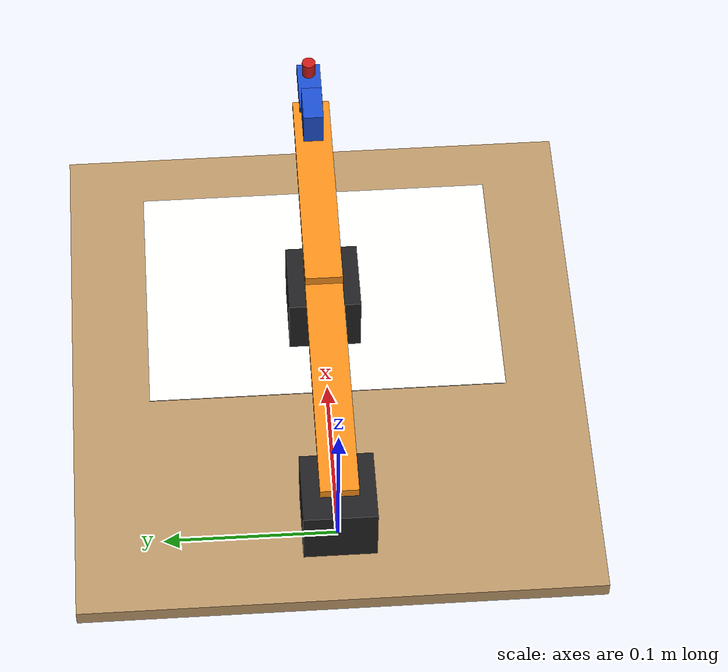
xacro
<?xml version="1.0"?>
<robot name="drawbot" xmlns:xacro="http://www.ros.org/wiki/xacro">

  <xacro:property name="L1" value="0.14"/>
  <xacro:property name="L2" value="0.14"/>          <!-- elbow axis to pen tip -->
  <xacro:property name="pen_offset" value="0.02"/>  <!-- lift hinge to pen axis -->
  <xacro:property name="link_w" value="0.022"/>
  <xacro:property name="link_t" value="0.006"/>
  <xacro:property name="nema" value="0.042"/>       <!-- NEMA 17 faceplate -->
  <xacro:property name="nema_h" value="0.040"/>
  <xacro:property name="board_t" value="0.010"/>
  <xacro:property name="shoulder_z" value="0.057"/>
  <xacro:property name="hinge_z" value="0.071"/>    <!-- lift hinge height above ground -->
  <xacro:property name="tip_clearance" value="0.0005"/>
  <xacro:property name="paper_top" value="${board_t + 0.0005}"/>

  <material name="wood"><color rgba="0.72 0.58 0.40 1"/></material>
  <material name="paper"><color rgba="0.97 0.97 0.95 1"/></material>
  <material name="motor"><color rgba="0.12 0.12 0.13 1"/></material>
  <material name="steel"><color rgba="0.75 0.75 0.78 1"/></material>
  <material name="arm"><color rgba="0.95 0.55 0.10 1"/></material>
  <material name="servo"><color rgba="0.10 0.30 0.80 1"/></material>
  <material name="pen"><color rgba="0.80 0.10 0.10 1"/></material>

  <xacro:macro name="box_inertial" params="m x y z *origin">
    <inertial>
      <xacro:insert_block name="origin"/>
      <mass value="${m}"/>
      <inertia ixx="${m*(y*y+z*z)/12}" iyy="${m*(x*x+z*z)/12}" izz="${m*(x*x+y*y)/12}"
               ixy="0" ixz="0" iyz="0"/>
    </inertial>
  </xacro:macro>

  <xacro:macro name="nema17" params="x z">
    <visual>
      <origin xyz="${x} 0 ${z}"/>
      <geometry><box size="${nema} ${nema} ${nema_h}"/></geometry>
      <material name="motor"/>
    </visual>
    <visual>
      <origin xyz="${x} 0 ${z + nema_h/2 + 0.006}"/>
      <geometry><cylinder radius="0.0025" length="0.012"/></geometry>
      <material name="steel"/>
    </visual>
  </xacro:macro>

  <!-- ================= base: board, paper, shoulder motor ================= -->
  <link name="world"/>
  <joint name="world_fixed" type="fixed">
    <parent link="world"/>
    <child link="base_link"/>
  </joint>

  <link name="base_link">
    <visual>
      <origin xyz="0.11 0 ${board_t/2}"/>
      <geometry><box size="0.32 0.30 ${board_t}"/></geometry>
      <material name="wood"/>
    </visual>
    <visual>
      <origin xyz="0.164 0 ${board_t + 0.00025}"/>
      <geometry><box size="0.148 0.210 0.0005"/></geometry>
      <material name="paper"/>
    </visual>
    <xacro:nema17 x="0" z="${board_t + nema_h/2}"/>
    <collision>
      <origin xyz="0.11 0 ${board_t/2}"/>
      <geometry><box size="0.32 0.30 ${board_t}"/></geometry>
    </collision>
    <xacro:box_inertial m="1.0" x="0.32" y="0.30" z="${board_t}">
      <origin xyz="0.11 0 ${board_t/2}"/>
    </xacro:box_inertial>
  </link>

  <!-- ================= link1 (carries the elbow motor) ================= -->
  <joint name="shoulder_joint" type="revolute">
    <parent link="base_link"/>
    <child link="link1"/>
    <origin xyz="0 0 ${shoulder_z}"/>
    <axis xyz="0 0 1"/>
    <limit lower="-2.6" upper="2.6" effort="5.0" velocity="6.0"/>
    <dynamics damping="0.01"/>
  </joint>

  <link name="link1">
    <visual>
      <origin xyz="${L1/2} 0 ${link_t/2}"/>
      <geometry><box size="${L1 + link_w} ${link_w} ${link_t}"/></geometry>
      <material name="arm"/>
    </visual>
    <xacro:nema17 x="${L1}" z="${-nema_h/2}"/>
    <xacro:box_inertial m="0.32" x="${L1}" y="${nema}" z="${nema_h}">
      <origin xyz="${L1*0.85} 0 -0.012"/>
    </xacro:box_inertial>
  </link>

  <!-- ================= link2 (carries the pen-lift servo) ================= -->
  <joint name="elbow_joint" type="revolute">
    <parent link="link1"/>
    <child link="link2"/>
    <origin xyz="${L1} 0 ${link_t + 0.002}"/>
    <axis xyz="0 0 1"/>
    <limit lower="-2.7" upper="2.7" effort="5.0" velocity="6.0"/>
    <dynamics damping="0.01"/>
  </joint>

  <link name="link2">
    <visual>
      <origin xyz="${(L2 - pen_offset)/2 - 0.005} 0 ${link_t/2}"/>
      <geometry><box size="${L2 - pen_offset + link_w - 0.010} ${link_w} ${link_t}"/></geometry>
      <material name="arm"/>
    </visual>
    <visual>
      <origin xyz="${L2 - pen_offset - 0.018} 0 ${link_t + 0.011}"/>
      <geometry><box size="0.023 0.012 0.022"/></geometry>
      <material name="servo"/>
    </visual>
    <xacro:box_inertial m="0.05" x="${L2}" y="${link_w}" z="0.02">
      <origin xyz="${L2/2} 0 0.005"/>
    </xacro:box_inertial>
  </link>

  <!-- ================= pen holder, tilted up by the servo ================= -->
  <xacro:property name="tip_z" value="${paper_top + tip_clearance - hinge_z}"/>

  <joint name="pen_lift_joint" type="revolute">
    <parent link="link2"/>
    <child link="pen_holder"/>
    <origin xyz="${L2 - pen_offset} 0 ${hinge_z - shoulder_z - link_t - 0.002}"/>
    <axis xyz="0 -1 0"/>   <!-- positive angle lifts the pen -->
    <limit lower="0.0" upper="0.6" effort="1.0" velocity="8.0"/>
    <dynamics damping="0.005"/>
  </joint>

  <link name="pen_holder">
    <visual>
      <origin xyz="${pen_offset/2} 0 0"/>
      <geometry><box size="${pen_offset + 0.014} 0.014 0.008"/></geometry>
      <material name="servo"/>
    </visual>
    <visual>
      <origin xyz="${pen_offset} 0 ${tip_z + 0.004 + 0.035}"/>
      <geometry><cylinder radius="0.004" length="0.070"/></geometry>
      <material name="pen"/>
    </visual>
    <visual>
      <origin xyz="${pen_offset} 0 ${tip_z + 0.002}"/>
      <geometry><cylinder radius="0.001" length="0.004"/></geometry>
      <material name="motor"/>
    </visual>
    <xacro:box_inertial m="0.015" x="0.02" y="0.02" z="0.07">
      <origin xyz="${pen_offset} 0 -0.02"/>
    </xacro:box_inertial>
  </link>

  <joint name="pen_tip_fixed" type="fixed">
    <parent link="pen_holder"/>
    <child link="pen_tip"/>
    <origin xyz="${pen_offset} 0 ${tip_z}"/>
  </joint>
  <link name="pen_tip"/>

  <!-- ================= Gazebo ================= -->
  <xacro:macro name="position_drive" params="joint topic max_vel">
    <gazebo>
      <plugin filename="gz-sim-joint-position-controller-system"
              name="gz::sim::systems::JointPositionController">
        <joint_name>${joint}</joint_name>
        <topic>${topic}</topic>
        <use_velocity_commands>true</use_velocity_commands>
        <cmd_max>${max_vel}</cmd_max>
        <cmd_min>${-max_vel}</cmd_min>
      </plugin>
    </gazebo>
  </xacro:macro>

  <xacro:position_drive joint="shoulder_joint" topic="/drawbot/shoulder/cmd_pos" max_vel="6.0"/>
  <xacro:position_drive joint="elbow_joint" topic="/drawbot/elbow/cmd_pos" max_vel="6.0"/>
  <xacro:position_drive joint="pen_lift_joint" topic="/drawbot/pen_lift/cmd_pos" max_vel="8.0"/>

  <gazebo>
    <plugin filename="gz-sim-joint-state-publisher-system"
            name="gz::sim::systems::JointStatePublisher">
      <topic>/drawbot/joint_states</topic>
      <update_rate>100</update_rate>
      <joint_name>shoulder_joint</joint_name>
      <joint_name>elbow_joint</joint_name>
      <joint_name>pen_lift_joint</joint_name>
    </plugin>
  </gazebo>

</robot>
